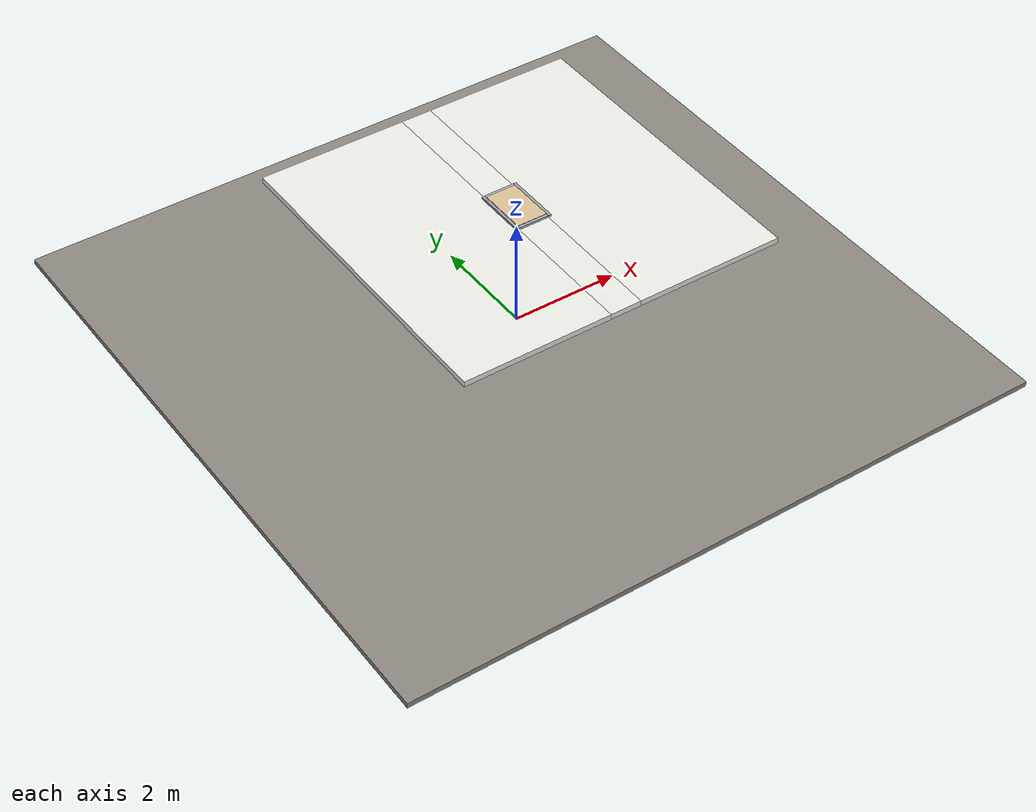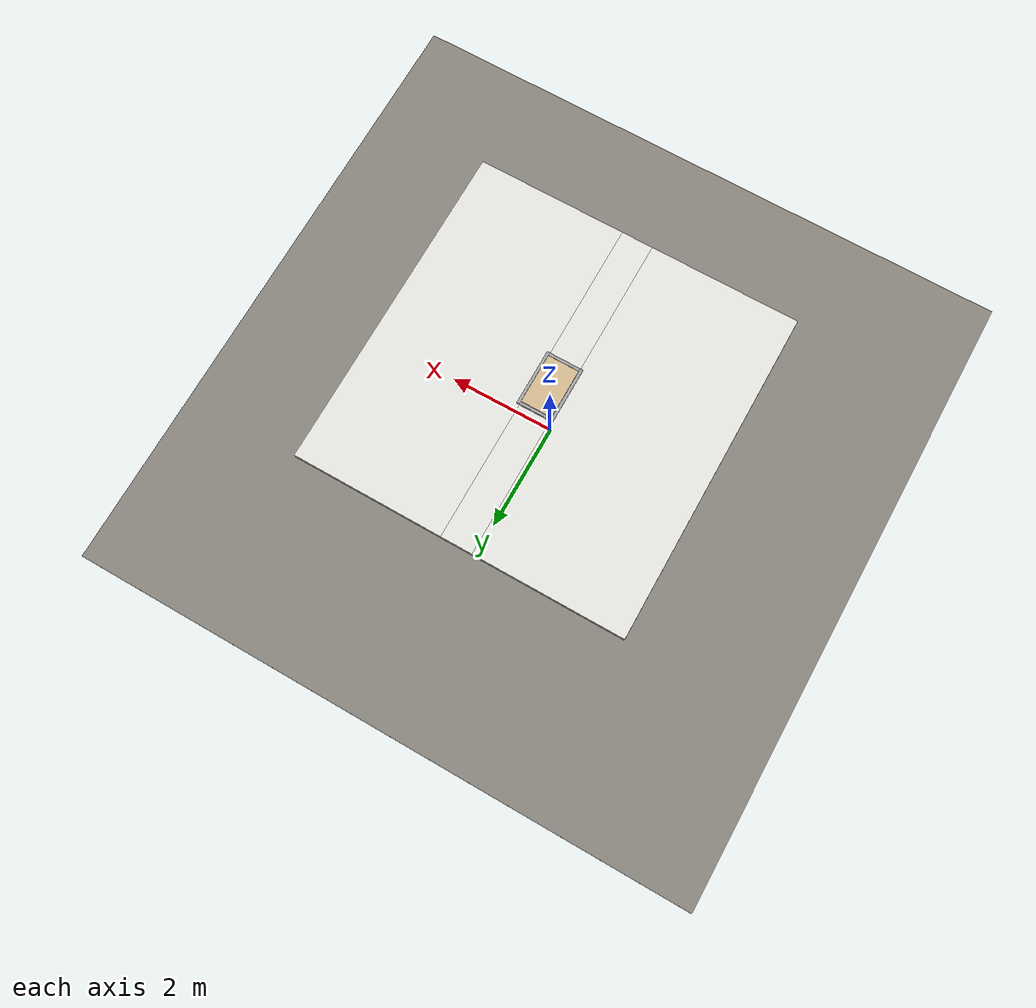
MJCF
<?xml version="1.0" ?>
<mujoco model="db0389_hatch_ceiling_minimal">
  <compiler angle="radian" meshdir="../../hardware" texturedir="../../textures" autolimits="true" inertiafromgeom="false"/>
  <option timestep="0.002" integrator="implicitfast" cone="elliptic" impratio="10" noslip_iterations="3">
    <flag multiccd="enable"/>
  </option>
  <size memory="16M"/>
  <default>
    <geom condim="4" solref="0.005 1" solimp="0.95 0.99 0.001"/>
    <joint solreflimit="0.005 1" solimplimit="0.95 0.99 0.001"/>
    <tendon solreflimit="0.005 1"/>
    <equality solref="0.002 1"/>
  </default>
  <visual>
    <headlight ambient="0.4 0.4 0.4" diffuse="0.7 0.7 0.7" specular="0.2 0.2 0.2"/>
    <quality shadowsize="4096"/>
    <map znear="0.01" zfar="60"/>
  </visual>
  <asset>
    <material name="mat_floor" rgba="0.55 0.53 0.5 1" specular="0.2" shininess="0.15" reflectance="0"/>
    <material name="mat_wall" rgba="0.78 0.76 0.7 1" specular="0.2" shininess="0.1" reflectance="0"/>
    <material name="mat_ceiling" rgba="0.92 0.92 0.9 1" specular="0.2" shininess="0.1" reflectance="0"/>
    <material name="mat_room_wall" rgba="0.86 0.85 0.82 1" specular="0.2" shininess="0.1" reflectance="0"/>
    <material name="mat_frame" rgba="0.65 0.66 0.68 1" specular="0.74" shininess="0.5" reflectance="0.36"/>
    <material name="mat_leaf" rgba="0.85 0.75 0.58 1" specular="0.2" shininess="0.4" reflectance="0"/>
    <material name="mat_hinge" rgba="0.65 0.66 0.68 1" specular="0.74" shininess="0.5" reflectance="0.36"/>
    <material name="mat_op_steel_galvanized" rgba="0.65 0.66 0.68 1" specular="0.74" shininess="0.5" reflectance="0.36"/>
    <material name="mat_strut" rgba="0.75 0.76 0.77 1" specular="0.8" shininess="0.65" reflectance="0.4"/>
    <material name="mat_bolt" rgba="0.65 0.66 0.68 1" specular="0.74" shininess="0.5" reflectance="0.36"/>
    <texture name="skybox" type="skybox" builtin="gradient" rgb1="0.6 0.7 0.85" rgb2="0.9 0.92 0.95" width="256" height="256"/>
  </asset>
  <worldbody>
    <light name="sun" pos="1.5 -2.5 4" dir="-0.3 0.5 -0.8" directional="true" diffuse="0.8 0.8 0.8" specular="0.3 0.3 0.3" castshadow="true"/>
    <light name="fill" pos="-1.5 2.5 3" dir="0.3 -0.5 -0.7" directional="true" diffuse="0.35 0.35 0.4" castshadow="false"/>
    <camera name="robot_view" pos="0 -1.875 3.38" xyaxes="1 0 0 0 0.26963 0.962964" fovy="52"/>
    <camera name="far_view" pos="0 1.875 3.38" xyaxes="-1 0 0 0 -0.26963 0.962964" fovy="52"/>
    <camera name="iso" pos="1.425 -1.575 3.68" xyaxes="0.741536 0.670913 0 -0.242917 0.268487 0.932151" fovy="46"/>
    <camera name="detail_handle" pos="0.35 -0.7375 1.578" xyaxes="0.843661 0.536875 0 0.426006 -0.669439 0.608581" fovy="38"/>
    <geom name="floor" type="box" size="6 6 0.05" pos="0 0 -0.05" material="mat_floor" group="0" contype="1" conaffinity="1" friction="0.8 0.005 0.0001" density="2400"/>
    <geom name="ceil_a" type="box" size="1.3575 3 0.05" pos="-1.6425 0 2.35" material="mat_ceiling" group="0" contype="1" conaffinity="1" friction="0.6 0.005 0.0001" density="600"/>
    <geom name="ceil_b" type="box" size="1.3575 3 0.05" pos="1.6425 0 2.35" material="mat_ceiling" group="0" contype="1" conaffinity="1" friction="0.6 0.005 0.0001" density="600"/>
    <geom name="ceil_c" type="box" size="0.285 1.2725 0.05" pos="0 -1.7275 2.35" material="mat_ceiling" group="0" contype="1" conaffinity="1" friction="0.6 0.005 0.0001" density="600"/>
    <geom name="ceil_d" type="box" size="0.285 1.2725 0.05" pos="0 1.7275 2.35" material="mat_ceiling" group="0" contype="1" conaffinity="1" friction="0.6 0.005 0.0001" density="600"/>
    <geom name="curb_l" type="box" size="0.025 0.505 0.02" pos="-0.31 0 2.42" material="mat_frame" group="0" contype="1" conaffinity="1" friction="0.6 0.005 0.0001" density="7850"/>
    <geom name="curb_r" type="box" size="0.025 0.505 0.02" pos="0.31 0 2.42" material="mat_frame" group="0" contype="1" conaffinity="1" friction="0.6 0.005 0.0001" density="7850"/>
    <geom name="curb_n" type="box" size="0.285 0.025 0.02" pos="0 -0.48 2.42" material="mat_frame" group="0" contype="1" conaffinity="1" friction="0.6 0.005 0.0001" density="7850"/>
    <geom name="curb_f" type="box" size="0.285 0.025 0.02" pos="0 0.48 2.42" material="mat_frame" group="0" contype="1" conaffinity="1" friction="0.6 0.005 0.0001" density="7850"/>
    <site name="approach_point" pos="0 -1.5 0" quat="1 0 0 0" size="0.05" rgba="0.2 0.9 0.2 0.5" group="4"/>
    <site name="goal_point" pos="0 0 2.9" quat="1 0 0 0" size="0.05" rgba="0.2 0.9 0.2 0.5" group="4"/>
    <site name="door_plane_center" pos="0 0 2.4" quat="1 0 0 0" size="0.02" rgba="0.2 0.9 0.2 0.5" group="4"/>
    <body name="hatch" pos="0 0.455 2.44">
      <inertial pos="0 -0.455 0" mass="5.59772" quat="0.707107 0 0 -0.707107" diaginertia="0.146354246 0.379594431 0.525814332"/>
      <joint name="hatch_hinge" type="hinge" axis="-1 0 0" pos="0 0.01 0" limited="true" range="0 1.396263" damping="30.515985" frictionloss="0.16804" stiffness="25.125" springref="-3.333333" armature="0.02"/>
      <geom name="hatch_slab" type="box" size="0.28 0.451 0.006" pos="0 -0.455 0" material="mat_leaf" group="0" contype="1" conaffinity="1" friction="0.6 0.005 0.0001" density="1"/>
      <body name="ring" pos="0 -0.6825 -0.006">
        <inertial pos="0 0.019982 -0.002997" mass="0.2225" quat="0.058307 0.998299 0 0" diaginertia="0.000076951 0.000083485 0.000154999"/>
        <joint name="ring_hinge" type="hinge" axis="-1 0 0" limited="true" range="0 1.5708" damping="0.003272" armature="0.0001"/>
        <geom name="ring_geom" type="capsule" size="0.006 0.035" pos="0 0.04 -0.006" quat="0.707107 0 0.707107 0" material="mat_op_steel_galvanized" group="0" contype="1" conaffinity="1" friction="0.6 0.005 0.0001" density="7800"/>
        <geom name="ring_knuckle" type="cylinder" size="0.008 0.022" pos="0 0 0" quat="0.707107 0 0.707107 0" material="mat_op_steel_galvanized" group="1" contype="0" conaffinity="0" density="7800"/>
        <geom name="ring_arm_n" type="capsule" size="0.006 0.02" pos="-0.02 0.02 -0.003" quat="0.707107 -0.707107 0 0" material="mat_op_steel_galvanized" group="1" contype="0" conaffinity="0" density="7800"/>
        <geom name="ring_arm_p" type="capsule" size="0.006 0.02" pos="0.02 0.02 -0.003" quat="0.707107 -0.707107 0 0" material="mat_op_steel_galvanized" group="1" contype="0" conaffinity="0" density="7800"/>
        <site name="grip_ring" pos="0 0.04 -0.006" quat="1 0 0 0" size="0.01" rgba="0.2 0.9 0.2 0.5" group="4"/>
      </body>
    </body>
  </worldbody>
  <sensor>
    <jointpos name="hatch_hinge_pos" joint="hatch_hinge"/>
    <jointvel name="hatch_hinge_vel" joint="hatch_hinge"/>
    <jointpos name="ring_hinge_pos" joint="ring_hinge"/>
    <jointvel name="ring_hinge_vel" joint="ring_hinge"/>
  </sensor>
</mujoco>
